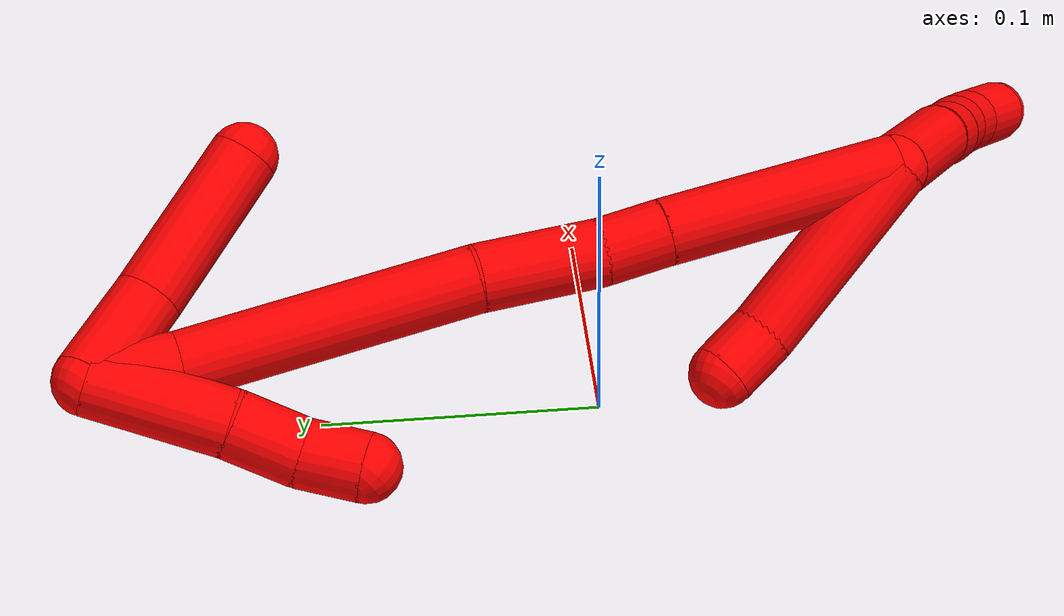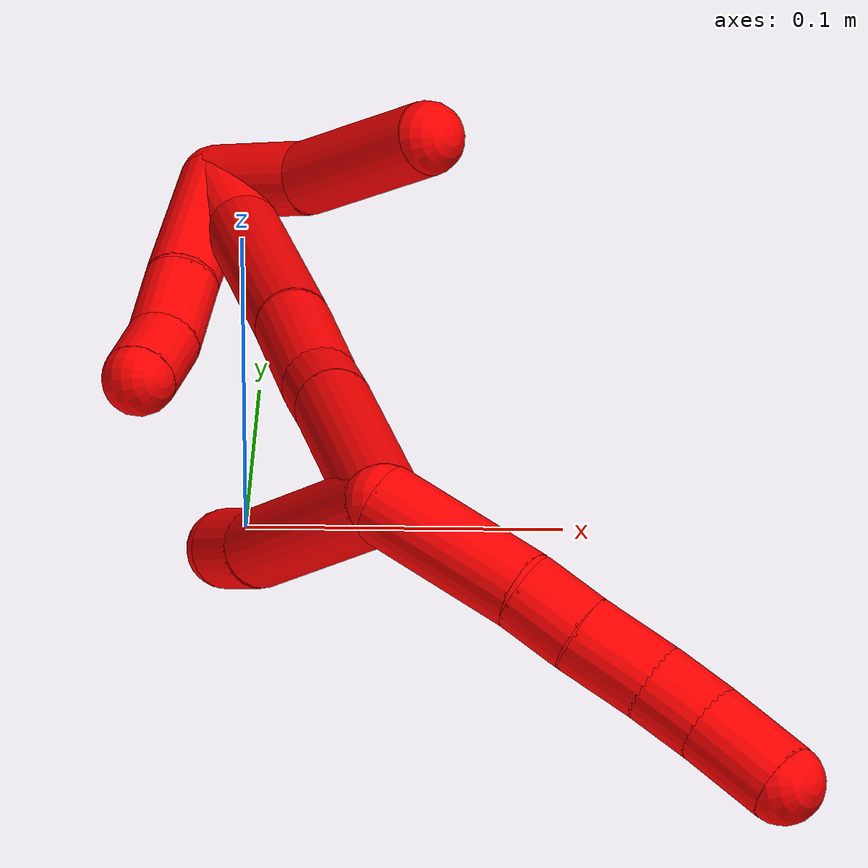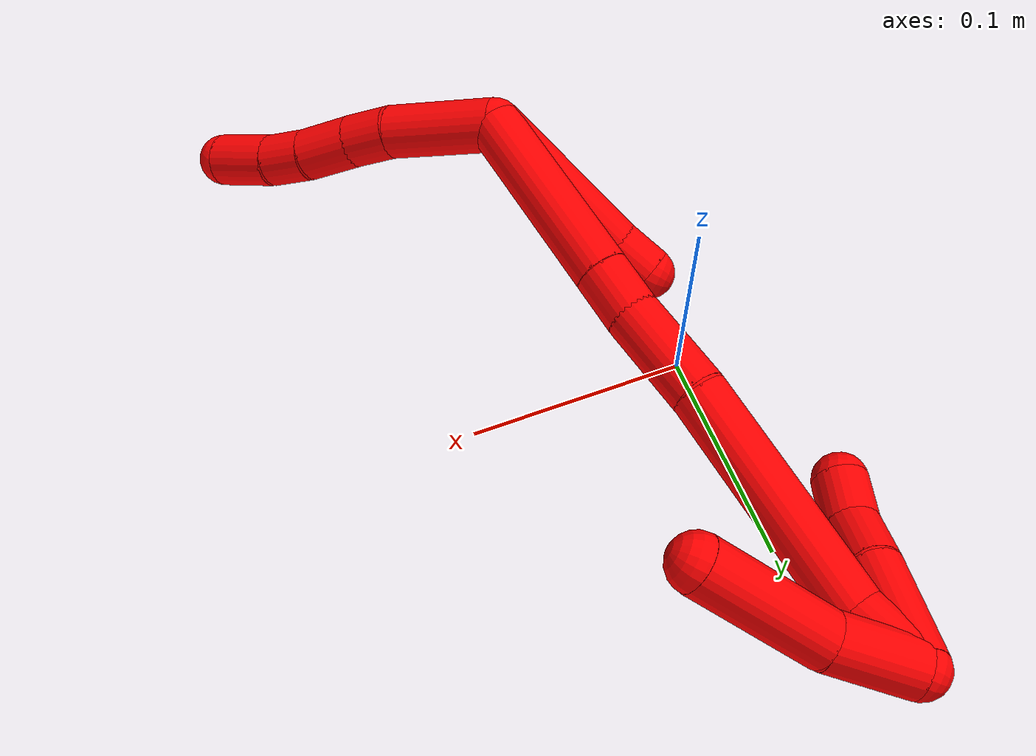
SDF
<sdf version="1.7">
 <world name="default">
  <model name="2">
   <static>0</static>
   <link name="2">
    <collision name="collision-cylinder-e_1_2_8">
     <pose>0.016185 -0.002239 0.02042 0.109228 0.667282 0.037891</pose>
     <geometry><cylinder><radius>0.0125</radius><length>0.052305</length></cylinder></geometry>
     <surface>
      <friction><ode><mu>1.16</mu><mu2>1.16</mu2><slip1>0</slip1><slip2>0</slip2></ode></friction>
      <contact><ode><kp>1e+06</kp><kd>1</kd><max_vel>0</max_vel><min_depth>0.001</min_depth></ode></contact>
     </surface>
    </collision>
    <visual name="visual-cylinder-e_1_2_8">
     <pose>0.016185 -0.002239 0.02042 0.109228 0.667282 0.037891</pose>
     <geometry><cylinder><radius>0.0125</radius><length>0.052305</length></cylinder></geometry>
     <material><ambient>1 0 0 1</ambient></material>
    </visual>
    <collision name="collision-cylinder-e_2_8_9">
     <pose>0.040208 -0.00528 0.047995 0.111479 0.827941 0.04902</pose>
     <geometry><cylinder><radius>0.0125</radius><length>0.021287</length></cylinder></geometry>
     <surface>
      <friction><ode><mu>1.16</mu><mu2>1.16</mu2><slip1>0</slip1><slip2>0</slip2></ode></friction>
      <contact><ode><kp>1e+06</kp><kd>1</kd><max_vel>0</max_vel><min_depth>0.001</min_depth></ode></contact>
     </surface>
    </collision>
    <visual name="visual-cylinder-e_2_8_9">
     <pose>0.040208 -0.00528 0.047995 0.111479 0.827941 0.04902</pose>
     <geometry><cylinder><radius>0.0125</radius><length>0.021287</length></cylinder></geometry>
     <material><ambient>1 0 0 1</ambient></material>
    </visual>
    <collision name="collision-cylinder-e_3_9_10">
     <pose>0.057793 -0.006186 0.063748 0.012236 0.847842 0.005522</pose>
     <geometry><cylinder><radius>0.0125</radius><length>0.025994</length></cylinder></geometry>
     <surface>
      <friction><ode><mu>1.16</mu><mu2>1.16</mu2><slip1>0</slip1><slip2>0</slip2></ode></friction>
      <contact><ode><kp>1e+06</kp><kd>1</kd><max_vel>0</max_vel><min_depth>0.001</min_depth></ode></contact>
     </surface>
    </collision>
    <visual name="visual-cylinder-e_3_9_10">
     <pose>0.057793 -0.006186 0.063748 0.012236 0.847842 0.005522</pose>
     <geometry><cylinder><radius>0.0125</radius><length>0.025994</length></cylinder></geometry>
     <material><ambient>1 0 0 1</ambient></material>
    </visual>
    <collision name="collision-cylinder-e_4_10_11">
     <pose>0.074802 -0.007419 0.079748 0.151268 0.770181 0.061411</pose>
     <geometry><cylinder><radius>0.0125</radius><length>0.020864</length></cylinder></geometry>
     <surface>
      <friction><ode><mu>1.16</mu><mu2>1.16</mu2><slip1>0</slip1><slip2>0</slip2></ode></friction>
      <contact><ode><kp>1e+06</kp><kd>1</kd><max_vel>0</max_vel><min_depth>0.001</min_depth></ode></contact>
     </surface>
    </collision>
    <visual name="visual-cylinder-e_4_10_11">
     <pose>0.074802 -0.007419 0.079748 0.151268 0.770181 0.061411</pose>
     <geometry><cylinder><radius>0.0125</radius><length>0.020864</length></cylinder></geometry>
     <material><ambient>1 0 0 1</ambient></material>
    </visual>
    <collision name="collision-cylinder-e_5_11_6">
     <pose>0.09107 -0.011752 0.098419 0.277085 0.655278 0.094714</pose>
     <geometry><cylinder><radius>0.0125</radius><length>0.029551</length></cylinder></geometry>
     <surface>
      <friction><ode><mu>1.16</mu><mu2>1.16</mu2><slip1>0</slip1><slip2>0</slip2></ode></friction>
      <contact><ode><kp>1e+06</kp><kd>1</kd><max_vel>0</max_vel><min_depth>0.001</min_depth></ode></contact>
     </surface>
    </collision>
    <visual name="visual-cylinder-e_5_11_6">
     <pose>0.09107 -0.011752 0.098419 0.277085 0.655278 0.094714</pose>
     <geometry><cylinder><radius>0.0125</radius><length>0.029551</length></cylinder></geometry>
     <material><ambient>1 0 0 1</ambient></material>
    </visual>
    <collision name="collision-cylinder-e_1_2_12">
     <pose>0.010979 0.004601 -0.037793 -3.02043 0.280766 -2.33072</pose>
     <geometry><cylinder><radius>0.0125</radius><length>0.079247</length></cylinder></geometry>
     <surface>
      <friction><ode><mu>1.16</mu><mu2>1.16</mu2><slip1>0</slip1><slip2>0</slip2></ode></friction>
      <contact><ode><kp>1e+06</kp><kd>1</kd><max_vel>0</max_vel><min_depth>0.001</min_depth></ode></contact>
     </surface>
    </collision>
    <visual name="visual-cylinder-e_1_2_12">
     <pose>0.010979 0.004601 -0.037793 -3.02043 0.280766 -2.33072</pose>
     <geometry><cylinder><radius>0.0125</radius><length>0.079247</length></cylinder></geometry>
     <material><ambient>1 0 0 1</ambient></material>
    </visual>
    <collision name="collision-cylinder-e_2_12_5">
     <pose>0.023381 0.011257 -0.085657 -2.94042 0.137467 -1.19724</pose>
     <geometry><cylinder><radius>0.0125</radius><length>0.020753</length></cylinder></geometry>
     <surface>
      <friction><ode><mu>1.16</mu><mu2>1.16</mu2><slip1>0</slip1><slip2>0</slip2></ode></friction>
      <contact><ode><kp>1e+06</kp><kd>1</kd><max_vel>0</max_vel><min_depth>0.001</min_depth></ode></contact>
     </surface>
    </collision>
    <visual name="visual-cylinder-e_2_12_5">
     <pose>0.023381 0.011257 -0.085657 -2.94042 0.137467 -1.19724</pose>
     <geometry><cylinder><radius>0.0125</radius><length>0.020753</length></cylinder></geometry>
     <material><ambient>1 0 0 1</ambient></material>
    </visual>
    <collision name="collision-cylinder-e_1_2_13">
     <pose>0.003066 0.028666 -0.034245 -2.44465 0.068537 -0.18817</pose>
     <geometry><cylinder><radius>0.0125</radius><length>0.089528</length></cylinder></geometry>
     <surface>
      <friction><ode><mu>1.16</mu><mu2>1.16</mu2><slip1>0</slip1><slip2>0</slip2></ode></friction>
      <contact><ode><kp>1e+06</kp><kd>1</kd><max_vel>0</max_vel><min_depth>0.001</min_depth></ode></contact>
     </surface>
    </collision>
    <visual name="visual-cylinder-e_1_2_13">
     <pose>0.003066 0.028666 -0.034245 -2.44465 0.068537 -0.18817</pose>
     <geometry><cylinder><radius>0.0125</radius><length>0.089528</length></cylinder></geometry>
     <material><ambient>1 0 0 1</ambient></material>
    </visual>
    <collision name="collision-cylinder-e_2_13_14">
     <pose>0.007223 0.064855 -0.077983 -2.47141 0.089914 -0.256959</pose>
     <geometry><cylinder><radius>0.0125</radius><length>0.024324</length></cylinder></geometry>
     <surface>
      <friction><ode><mu>1.16</mu><mu2>1.16</mu2><slip1>0</slip1><slip2>0</slip2></ode></friction>
      <contact><ode><kp>1e+06</kp><kd>1</kd><max_vel>0</max_vel><min_depth>0.001</min_depth></ode></contact>
     </surface>
    </collision>
    <visual name="visual-cylinder-e_2_13_14">
     <pose>0.007223 0.064855 -0.077983 -2.47141 0.089914 -0.256959</pose>
     <geometry><cylinder><radius>0.0125</radius><length>0.024324</length></cylinder></geometry>
     <material><ambient>1 0 0 1</ambient></material>
    </visual>
    <collision name="collision-cylinder-e_3_14_15">
     <pose>0.007422 0.08765 -0.104873 -2.42116 -0.038565 0.102313</pose>
     <geometry><cylinder><radius>0.0125</radius><length>0.046334</length></cylinder></geometry>
     <surface>
      <friction><ode><mu>1.16</mu><mu2>1.16</mu2><slip1>0</slip1><slip2>0</slip2></ode></friction>
      <contact><ode><kp>1e+06</kp><kd>1</kd><max_vel>0</max_vel><min_depth>0.001</min_depth></ode></contact>
     </surface>
    </collision>
    <visual name="visual-cylinder-e_3_14_15">
     <pose>0.007422 0.08765 -0.104873 -2.42116 -0.038565 0.102313</pose>
     <geometry><cylinder><radius>0.0125</radius><length>0.046334</length></cylinder></geometry>
     <material><ambient>1 0 0 1</ambient></material>
    </visual>
    <collision name="collision-cylinder-e_4_15_16">
     <pose>0.010958 0.137117 -0.163859 -2.45345 0.082086 -0.228216</pose>
     <geometry><cylinder><radius>0.0125</radius><length>0.108046</length></cylinder></geometry>
     <surface>
      <friction><ode><mu>1.16</mu><mu2>1.16</mu2><slip1>0</slip1><slip2>0</slip2></ode></friction>
      <contact><ode><kp>1e+06</kp><kd>1</kd><max_vel>0</max_vel><min_depth>0.001</min_depth></ode></contact>
     </surface>
    </collision>
    <visual name="visual-cylinder-e_4_15_16">
     <pose>0.010958 0.137117 -0.163859 -2.45345 0.082086 -0.228216</pose>
     <geometry><cylinder><radius>0.0125</radius><length>0.108046</length></cylinder></geometry>
     <material><ambient>1 0 0 1</ambient></material>
    </visual>
    <collision name="collision-cylinder-e_5_16_1">
     <pose>0.01197 0.181319 -0.217299 -2.44035 -0.216902 0.578689</pose>
     <geometry><cylinder><radius>0.0125</radius><length>0.031768</length></cylinder></geometry>
     <surface>
      <friction><ode><mu>1.16</mu><mu2>1.16</mu2><slip1>0</slip1><slip2>0</slip2></ode></friction>
      <contact><ode><kp>1e+06</kp><kd>1</kd><max_vel>0</max_vel><min_depth>0.001</min_depth></ode></contact>
     </surface>
    </collision>
    <visual name="visual-cylinder-e_5_16_1">
     <pose>0.01197 0.181319 -0.217299 -2.44035 -0.216902 0.578689</pose>
     <geometry><cylinder><radius>0.0125</radius><length>0.031768</length></cylinder></geometry>
     <material><ambient>1 0 0 1</ambient></material>
    </visual>
    <collision name="collision-cylinder-e_1_1_17">
     <pose>0.010781 0.192966 -0.210016 -0.085438 0.115603 -0.004947</pose>
     <geometry><cylinder><radius>0.0125</radius><length>0.038668</length></cylinder></geometry>
     <surface>
      <friction><ode><mu>1.16</mu><mu2>1.16</mu2><slip1>0</slip1><slip2>0</slip2></ode></friction>
      <contact><ode><kp>1e+06</kp><kd>1</kd><max_vel>0</max_vel><min_depth>0.001</min_depth></ode></contact>
     </surface>
    </collision>
    <visual name="visual-cylinder-e_1_1_17">
     <pose>0.010781 0.192966 -0.210016 -0.085438 0.115603 -0.004947</pose>
     <geometry><cylinder><radius>0.0125</radius><length>0.038668</length></cylinder></geometry>
     <material><ambient>1 0 0 1</ambient></material>
    </visual>
    <collision name="collision-cylinder-e_2_17_4">
     <pose>0.008509 0.195826 -0.160572 -0.040291 -0.147349 0.002974</pose>
     <geometry><cylinder><radius>0.0125</radius><length>0.061332</length></cylinder></geometry>
     <surface>
      <friction><ode><mu>1.16</mu><mu2>1.16</mu2><slip1>0</slip1><slip2>0</slip2></ode></friction>
      <contact><ode><kp>1e+06</kp><kd>1</kd><max_vel>0</max_vel><min_depth>0.001</min_depth></ode></contact>
     </surface>
    </collision>
    <visual name="visual-cylinder-e_2_17_4">
     <pose>0.008509 0.195826 -0.160572 -0.040291 -0.147349 0.002974</pose>
     <geometry><cylinder><radius>0.0125</radius><length>0.061332</length></cylinder></geometry>
     <material><ambient>1 0 0 1</ambient></material>
    </visual>
    <collision name="collision-cylinder-e_1_1_18">
     <pose>0.011575 0.167673 -0.22109 1.24235 0.120429 0.08624</pose>
     <geometry><cylinder><radius>0.0125</radius><length>0.050343</length></cylinder></geometry>
     <surface>
      <friction><ode><mu>1.16</mu><mu2>1.16</mu2><slip1>0</slip1><slip2>0</slip2></ode></friction>
      <contact><ode><kp>1e+06</kp><kd>1</kd><max_vel>0</max_vel><min_depth>0.001</min_depth></ode></contact>
     </surface>
    </collision>
    <visual name="visual-cylinder-e_1_1_18">
     <pose>0.011575 0.167673 -0.22109 1.24235 0.120429 0.08624</pose>
     <geometry><cylinder><radius>0.0125</radius><length>0.050343</length></cylinder></geometry>
     <material><ambient>1 0 0 1</ambient></material>
    </visual>
    <collision name="collision-cylinder-e_2_18_19">
     <pose>0.017545 0.13155 -0.209671 1.30773 0.224269 0.172159</pose>
     <geometry><cylinder><radius>0.0125</radius><length>0.026493</length></cylinder></geometry>
     <surface>
      <friction><ode><mu>1.16</mu><mu2>1.16</mu2><slip1>0</slip1><slip2>0</slip2></ode></friction>
      <contact><ode><kp>1e+06</kp><kd>1</kd><max_vel>0</max_vel><min_depth>0.001</min_depth></ode></contact>
     </surface>
    </collision>
    <visual name="visual-cylinder-e_2_18_19">
     <pose>0.017545 0.13155 -0.209671 1.30773 0.224269 0.172159</pose>
     <geometry><cylinder><radius>0.0125</radius><length>0.026493</length></cylinder></geometry>
     <material><ambient>1 0 0 1</ambient></material>
    </visual>
    <collision name="collision-cylinder-e_3_19_3">
     <pose>0.019573 0.108153 -0.202581 1.2417 -0.079336 -0.056755</pose>
     <geometry><cylinder><radius>0.0125</radius><length>0.023164</length></cylinder></geometry>
     <surface>
      <friction><ode><mu>1.16</mu><mu2>1.16</mu2><slip1>0</slip1><slip2>0</slip2></ode></friction>
      <contact><ode><kp>1e+06</kp><kd>1</kd><max_vel>0</max_vel><min_depth>0.001</min_depth></ode></contact>
     </surface>
    </collision>
    <visual name="visual-cylinder-e_3_19_3">
     <pose>0.019573 0.108153 -0.202581 1.2417 -0.079336 -0.056755</pose>
     <geometry><cylinder><radius>0.0125</radius><length>0.023164</length></cylinder></geometry>
     <material><ambient>1 0 0 1</ambient></material>
    </visual>
    <collision name="collision-sphere-3">
     <pose>0.018655 0.097227 -0.198849 0 -0 0</pose>
     <geometry><sphere><radius>0.0125</radius></sphere></geometry>
     <surface>
      <friction><ode><mu>1.16</mu><mu2>1.16</mu2><slip1>0</slip1><slip2>0</slip2></ode></friction>
      <contact><ode><kp>1e+06</kp><kd>1</kd><max_vel>0</max_vel><min_depth>0.001</min_depth></ode></contact>
     </surface>
    </collision>
    <visual name="visual-sphere-3">
     <pose>0.018655 0.097227 -0.198849 0 -0 0</pose>
     <geometry><sphere><radius>0.0125</radius></sphere></geometry>
     <material><ambient>1 0 0 1</ambient></material>
    </visual>
    <collision name="collision-sphere-19">
     <pose>0.020491 0.11908 -0.206312 0 -0 0</pose>
     <geometry><sphere><radius>0.0125</radius></sphere></geometry>
     <surface>
      <friction><ode><mu>1.16</mu><mu2>1.16</mu2><slip1>0</slip1><slip2>0</slip2></ode></friction>
      <contact><ode><kp>1e+06</kp><kd>1</kd><max_vel>0</max_vel><min_depth>0.001</min_depth></ode></contact>
     </surface>
    </collision>
    <visual name="visual-sphere-19">
     <pose>0.020491 0.11908 -0.206312 0 -0 0</pose>
     <geometry><sphere><radius>0.0125</radius></sphere></geometry>
     <material><ambient>1 0 0 1</ambient></material>
    </visual>
    <collision name="collision-sphere-6">
     <pose>0.100074 -0.014957 0.109687 0 -0 0</pose>
     <geometry><sphere><radius>0.0125</radius></sphere></geometry>
     <surface>
      <friction><ode><mu>1.16</mu><mu2>1.16</mu2><slip1>0</slip1><slip2>0</slip2></ode></friction>
      <contact><ode><kp>1e+06</kp><kd>1</kd><max_vel>0</max_vel><min_depth>0.001</min_depth></ode></contact>
     </surface>
    </collision>
    <visual name="visual-sphere-6">
     <pose>0.100074 -0.014957 0.109687 0 -0 0</pose>
     <geometry><sphere><radius>0.0125</radius></sphere></geometry>
     <material><ambient>1 0 0 1</ambient></material>
    </visual>
    <collision name="collision-sphere-11">
     <pose>0.082066 -0.008548 0.087151 0 -0 0</pose>
     <geometry><sphere><radius>0.0125</radius></sphere></geometry>
     <surface>
      <friction><ode><mu>1.16</mu><mu2>1.16</mu2><slip1>0</slip1><slip2>0</slip2></ode></friction>
      <contact><ode><kp>1e+06</kp><kd>1</kd><max_vel>0</max_vel><min_depth>0.001</min_depth></ode></contact>
     </surface>
    </collision>
    <visual name="visual-sphere-11">
     <pose>0.082066 -0.008548 0.087151 0 -0 0</pose>
     <geometry><sphere><radius>0.0125</radius></sphere></geometry>
     <material><ambient>1 0 0 1</ambient></material>
    </visual>
    <collision name="collision-sphere-10">
     <pose>0.067539 -0.006291 0.072346 0 -0 0</pose>
     <geometry><sphere><radius>0.0125</radius></sphere></geometry>
     <surface>
      <friction><ode><mu>1.16</mu><mu2>1.16</mu2><slip1>0</slip1><slip2>0</slip2></ode></friction>
      <contact><ode><kp>1e+06</kp><kd>1</kd><max_vel>0</max_vel><min_depth>0.001</min_depth></ode></contact>
     </surface>
    </collision>
    <visual name="visual-sphere-10">
     <pose>0.067539 -0.006291 0.072346 0 -0 0</pose>
     <geometry><sphere><radius>0.0125</radius></sphere></geometry>
     <material><ambient>1 0 0 1</ambient></material>
    </visual>
    <collision name="collision-sphere-9">
     <pose>0.048048 -0.006081 0.05515 0 -0 0</pose>
     <geometry><sphere><radius>0.0125</radius></sphere></geometry>
     <surface>
      <friction><ode><mu>1.16</mu><mu2>1.16</mu2><slip1>0</slip1><slip2>0</slip2></ode></friction>
      <contact><ode><kp>1e+06</kp><kd>1</kd><max_vel>0</max_vel><min_depth>0.001</min_depth></ode></contact>
     </surface>
    </collision>
    <visual name="visual-sphere-9">
     <pose>0.048048 -0.006081 0.05515 0 -0 0</pose>
     <geometry><sphere><radius>0.0125</radius></sphere></geometry>
     <material><ambient>1 0 0 1</ambient></material>
    </visual>
    <collision name="collision-sphere-2">
     <geometry><sphere><radius>0.0125</radius></sphere></geometry>
     <surface>
      <friction><ode><mu>1.16</mu><mu2>1.16</mu2><slip1>0</slip1><slip2>0</slip2></ode></friction>
      <contact><ode><kp>1e+06</kp><kd>1</kd><max_vel>0</max_vel><min_depth>0.001</min_depth></ode></contact>
     </surface>
    </collision>
    <visual name="visual-sphere-2">
     <geometry><sphere><radius>0.0125</radius></sphere></geometry>
     <material><ambient>1 0 0 1</ambient></material>
    </visual>
    <collision name="collision-sphere-8">
     <pose>0.032369 -0.004479 0.040841 0 -0 0</pose>
     <geometry><sphere><radius>0.0125</radius></sphere></geometry>
     <surface>
      <friction><ode><mu>1.16</mu><mu2>1.16</mu2><slip1>0</slip1><slip2>0</slip2></ode></friction>
      <contact><ode><kp>1e+06</kp><kd>1</kd><max_vel>0</max_vel><min_depth>0.001</min_depth></ode></contact>
     </surface>
    </collision>
    <visual name="visual-sphere-8">
     <pose>0.032369 -0.004479 0.040841 0 -0 0</pose>
     <geometry><sphere><radius>0.0125</radius></sphere></geometry>
     <material><ambient>1 0 0 1</ambient></material>
    </visual>
    <collision name="collision-sphere-12">
     <pose>0.021959 0.009203 -0.075586 0 -0 0</pose>
     <geometry><sphere><radius>0.0125</radius></sphere></geometry>
     <surface>
      <friction><ode><mu>1.16</mu><mu2>1.16</mu2><slip1>0</slip1><slip2>0</slip2></ode></friction>
      <contact><ode><kp>1e+06</kp><kd>1</kd><max_vel>0</max_vel><min_depth>0.001</min_depth></ode></contact>
     </surface>
    </collision>
    <visual name="visual-sphere-12">
     <pose>0.021959 0.009203 -0.075586 0 -0 0</pose>
     <geometry><sphere><radius>0.0125</radius></sphere></geometry>
     <material><ambient>1 0 0 1</ambient></material>
    </visual>
    <collision name="collision-sphere-5">
     <pose>0.024803 0.013311 -0.095728 0 -0 0</pose>
     <geometry><sphere><radius>0.0125</radius></sphere></geometry>
     <surface>
      <friction><ode><mu>1.16</mu><mu2>1.16</mu2><slip1>0</slip1><slip2>0</slip2></ode></friction>
      <contact><ode><kp>1e+06</kp><kd>1</kd><max_vel>0</max_vel><min_depth>0.001</min_depth></ode></contact>
     </surface>
    </collision>
    <visual name="visual-sphere-5">
     <pose>0.024803 0.013311 -0.095728 0 -0 0</pose>
     <geometry><sphere><radius>0.0125</radius></sphere></geometry>
     <material><ambient>1 0 0 1</ambient></material>
    </visual>
    <collision name="collision-sphere-13">
     <pose>0.006131 0.057331 -0.06849 0 -0 0</pose>
     <geometry><sphere><radius>0.0125</radius></sphere></geometry>
     <surface>
      <friction><ode><mu>1.16</mu><mu2>1.16</mu2><slip1>0</slip1><slip2>0</slip2></ode></friction>
      <contact><ode><kp>1e+06</kp><kd>1</kd><max_vel>0</max_vel><min_depth>0.001</min_depth></ode></contact>
     </surface>
    </collision>
    <visual name="visual-sphere-13">
     <pose>0.006131 0.057331 -0.06849 0 -0 0</pose>
     <geometry><sphere><radius>0.0125</radius></sphere></geometry>
     <material><ambient>1 0 0 1</ambient></material>
    </visual>
    <collision name="collision-sphere-14">
     <pose>0.008315 0.072378 -0.087476 0 -0 0</pose>
     <geometry><sphere><radius>0.0125</radius></sphere></geometry>
     <surface>
      <friction><ode><mu>1.16</mu><mu2>1.16</mu2><slip1>0</slip1><slip2>0</slip2></ode></friction>
      <contact><ode><kp>1e+06</kp><kd>1</kd><max_vel>0</max_vel><min_depth>0.001</min_depth></ode></contact>
     </surface>
    </collision>
    <visual name="visual-sphere-14">
     <pose>0.008315 0.072378 -0.087476 0 -0 0</pose>
     <geometry><sphere><radius>0.0125</radius></sphere></geometry>
     <material><ambient>1 0 0 1</ambient></material>
    </visual>
    <collision name="collision-sphere-15">
     <pose>0.006529 0.102922 -0.122271 0 -0 0</pose>
     <geometry><sphere><radius>0.0125</radius></sphere></geometry>
     <surface>
      <friction><ode><mu>1.16</mu><mu2>1.16</mu2><slip1>0</slip1><slip2>0</slip2></ode></friction>
      <contact><ode><kp>1e+06</kp><kd>1</kd><max_vel>0</max_vel><min_depth>0.001</min_depth></ode></contact>
     </surface>
    </collision>
    <visual name="visual-sphere-15">
     <pose>0.006529 0.102922 -0.122271 0 -0 0</pose>
     <geometry><sphere><radius>0.0125</radius></sphere></geometry>
     <material><ambient>1 0 0 1</ambient></material>
    </visual>
    <collision name="collision-sphere-16">
     <pose>0.015388 0.171312 -0.205448 0 -0 0</pose>
     <geometry><sphere><radius>0.0125</radius></sphere></geometry>
     <surface>
      <friction><ode><mu>1.16</mu><mu2>1.16</mu2><slip1>0</slip1><slip2>0</slip2></ode></friction>
      <contact><ode><kp>1e+06</kp><kd>1</kd><max_vel>0</max_vel><min_depth>0.001</min_depth></ode></contact>
     </surface>
    </collision>
    <visual name="visual-sphere-16">
     <pose>0.015388 0.171312 -0.205448 0 -0 0</pose>
     <geometry><sphere><radius>0.0125</radius></sphere></geometry>
     <material><ambient>1 0 0 1</ambient></material>
    </visual>
    <collision name="collision-sphere-1">
     <pose>0.008551 0.191327 -0.229151 0 -0 0</pose>
     <geometry><sphere><radius>0.0125</radius></sphere></geometry>
     <surface>
      <friction><ode><mu>1.16</mu><mu2>1.16</mu2><slip1>0</slip1><slip2>0</slip2></ode></friction>
      <contact><ode><kp>1e+06</kp><kd>1</kd><max_vel>0</max_vel><min_depth>0.001</min_depth></ode></contact>
     </surface>
    </collision>
    <visual name="visual-sphere-1">
     <pose>0.008551 0.191327 -0.229151 0 -0 0</pose>
     <geometry><sphere><radius>0.0125</radius></sphere></geometry>
     <material><ambient>1 0 0 1</ambient></material>
    </visual>
    <collision name="collision-sphere-18">
     <pose>0.014599 0.14402 -0.213029 0 -0 0</pose>
     <geometry><sphere><radius>0.0125</radius></sphere></geometry>
     <surface>
      <friction><ode><mu>1.16</mu><mu2>1.16</mu2><slip1>0</slip1><slip2>0</slip2></ode></friction>
      <contact><ode><kp>1e+06</kp><kd>1</kd><max_vel>0</max_vel><min_depth>0.001</min_depth></ode></contact>
     </surface>
    </collision>
    <visual name="visual-sphere-18">
     <pose>0.014599 0.14402 -0.213029 0 -0 0</pose>
     <geometry><sphere><radius>0.0125</radius></sphere></geometry>
     <material><ambient>1 0 0 1</ambient></material>
    </visual>
    <collision name="collision-sphere-17">
     <pose>0.013011 0.194605 -0.190881 0 -0 0</pose>
     <geometry><sphere><radius>0.0125</radius></sphere></geometry>
     <surface>
      <friction><ode><mu>1.16</mu><mu2>1.16</mu2><slip1>0</slip1><slip2>0</slip2></ode></friction>
      <contact><ode><kp>1e+06</kp><kd>1</kd><max_vel>0</max_vel><min_depth>0.001</min_depth></ode></contact>
     </surface>
    </collision>
    <visual name="visual-sphere-17">
     <pose>0.013011 0.194605 -0.190881 0 -0 0</pose>
     <geometry><sphere><radius>0.0125</radius></sphere></geometry>
     <material><ambient>1 0 0 1</ambient></material>
    </visual>
    <collision name="collision-sphere-4">
     <pose>0.004007 0.197048 -0.130263 0 -0 0</pose>
     <geometry><sphere><radius>0.0125</radius></sphere></geometry>
     <surface>
      <friction><ode><mu>1.16</mu><mu2>1.16</mu2><slip1>0</slip1><slip2>0</slip2></ode></friction>
      <contact><ode><kp>1e+06</kp><kd>1</kd><max_vel>0</max_vel><min_depth>0.001</min_depth></ode></contact>
     </surface>
    </collision>
    <visual name="visual-sphere-4">
     <pose>0.004007 0.197048 -0.130263 0 -0 0</pose>
     <geometry><sphere><radius>0.0125</radius></sphere></geometry>
     <material><ambient>1 0 0 1</ambient></material>
    </visual>
    <inertial>
     <pose>0.018147 0.083186 -0.09364 0 -0 0</pose>
     <mass>0.75</mass>
     <inertia>
      <ixx>0.000163</ixx>
      <ixy>0</ixy>
      <ixz>0</ixz>
      <iyy>-0.000108</iyy>
      <iyz>0</iyz>
      <izz>-0.000155</izz>
     </inertia>
    </inertial>
   </link>
   <pose>0.046428 -0.113837 0.065746 0.751152 1.07052 0.119666</pose>
  </model>
 </world>
</sdf>
